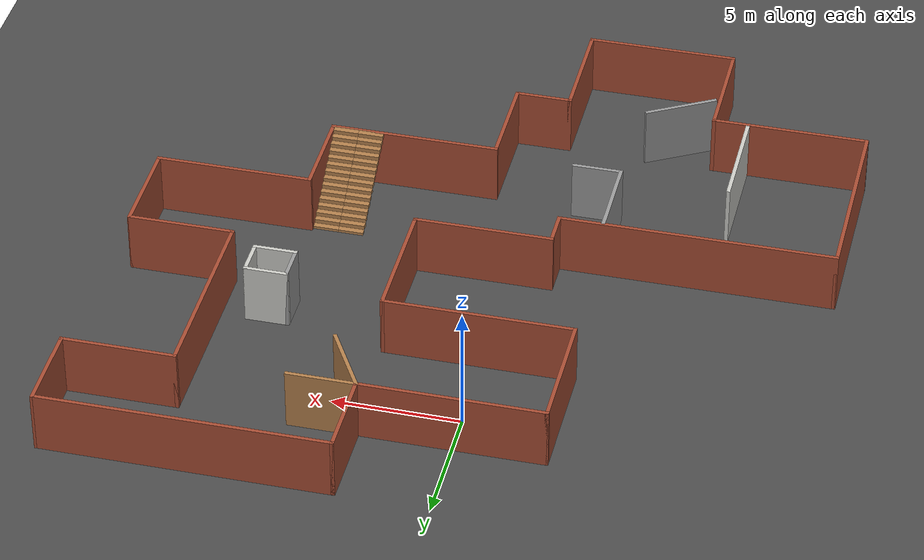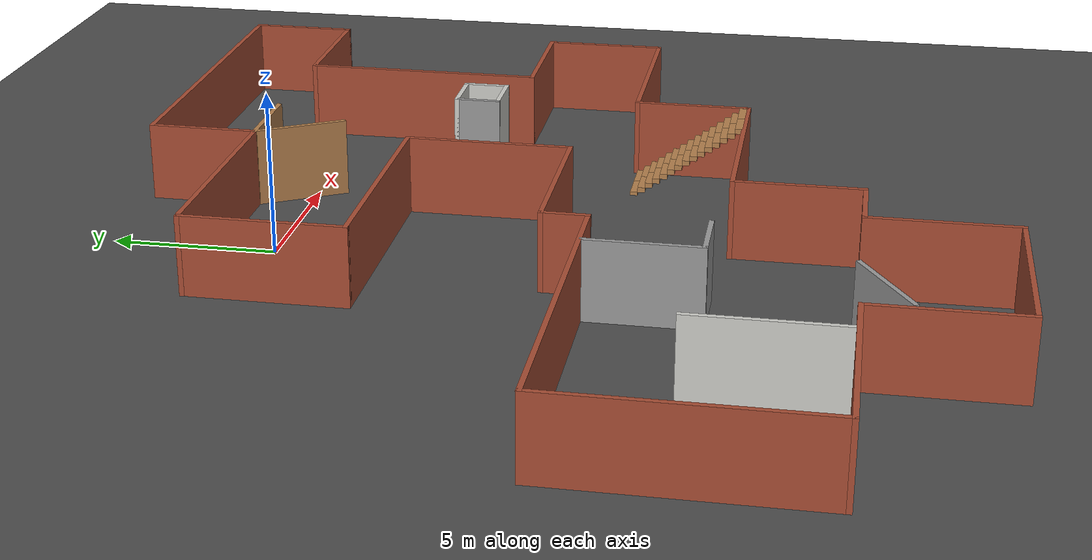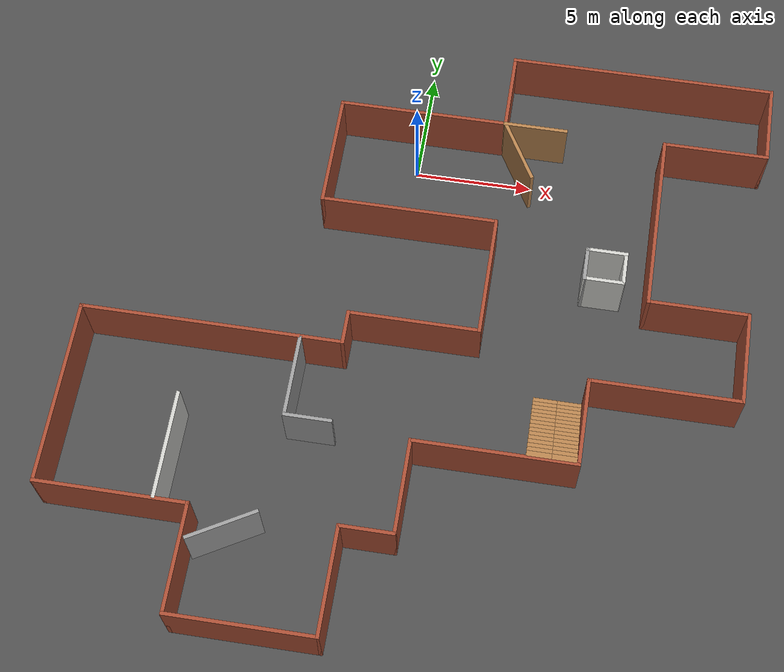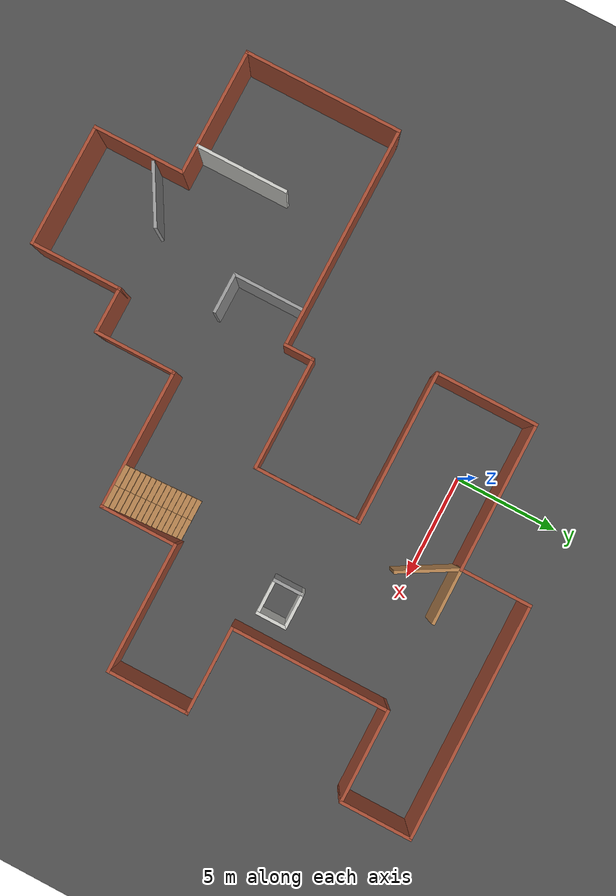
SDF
<sdf version="1.6">
 <world name="default">
  <light name="sun" type="directional">
   <pose>0 0 10 0 -0 0</pose>
   <diffuse>0.8 0.8 0.8 1</diffuse>
   <specular>0.2 0.2 0.2 1</specular>
   <attenuation>
    <range>1000</range>
    <constant>0.9</constant>
    <linear>0.01</linear>
    <quadratic>0.001</quadratic>
   </attenuation>
   <direction>-0.5 0.1 -0.9</direction>
  </light>
  <model name="ground_plane">
   <static>1</static>
   <link name="link">
    <collision name="collision">
     <geometry><plane><normal>0 0 1</normal><size>100 100</size></plane></geometry>
     <surface>
      <contact><collide_bitmask>65535</collide_bitmask></contact>
      <friction><ode><mu>100</mu><mu2>50</mu2></ode></friction>
     </surface>
    </collision>
    <visual name="visual">
     <cast_shadows>0</cast_shadows>
     <geometry><plane><normal>0 0 1</normal><size>100 100</size></plane></geometry>
     <material>
      <script><uri>file://media/materials/scripts/gazebo.material</uri><name>Gazebo/Grey</name></script>
     </material>
    </visual>
   </link>
  </model>
  <model name="asphalt_plane">
   <static>1</static>
   <link name="link">
    <collision name="collision"><geometry><box><size>200 200 0.1</size></box></geometry></collision>
    <visual name="visual">
     <cast_shadows>0</cast_shadows>
     <geometry><box><size>200 200 0.1</size></box></geometry>
     <material>
      <script>
       <uri>model://asphalt_plane/materials/scripts</uri>
       <uri>model://asphalt_plane/materials/textures</uri>
       <name>vrc/asphalt</name>
      </script>
     </material>
    </visual>
   </link>
  </model>
  <physics name="default_physics" default="0" type="ode">
   <ode>
    <solver>
     <type>quick</type>
     <iters>10</iters>
     <sor>1.3</sor>
     <use_dynamic_moi_rescaling>0</use_dynamic_moi_rescaling>
    </solver>
    <constraints>
     <cfm>0</cfm>
     <erp>0.2</erp>
     <contact_max_correcting_vel>100</contact_max_correcting_vel>
     <contact_surface_layer>0.001</contact_surface_layer>
    </constraints>
   </ode>
   <max_step_size>0.002</max_step_size>
   <real_time_factor>1</real_time_factor>
   <real_time_update_rate>500</real_time_update_rate>
  </physics>
  <gravity>0 0 -9.8066</gravity>
  <magnetic_field>6e-06 2.3e-05 -4.2e-05</magnetic_field>
  <atmosphere type="adiabatic"/>
  <scene><ambient>0.4 0.4 0.4 1</ambient><background>0.7 0.7 0.7 1</background><shadows>1</shadows></scene>
  <audio><device>default</device></audio>
  <spherical_coordinates>
   <surface_model>EARTH_WGS84</surface_model>
   <latitude_deg>0</latitude_deg>
   <longitude_deg>0</longitude_deg>
   <elevation>0</elevation>
   <heading_deg>0</heading_deg>
  </spherical_coordinates>
  <model name="complex_home_5">
   <pose>1.2585 -8.32201 0 0 -0 0</pose>
   <link name="Stairs_0">
    <visual name="Stairs_0_Visual_0">
     <pose>6.59442 -1.67499 0.083333 0 -0 0</pose>
     <geometry><box><size>1 0.233333 0.166667</size></box></geometry>
     <material>
      <script><uri>file://media/materials/scripts/gazebo.material</uri><name>Gazebo/Wood</name></script>
      <ambient>1 1 1 1</ambient>
     </material>
     <meta><layer>0</layer></meta>
    </visual>
    <collision name="Stairs_0_Collision_0">
     <geometry><box><size>1 0.233333 0.166667</size></box></geometry>
     <pose>6.59442 -1.67499 0.083333 0 -0 0</pose>
    </collision>
    <visual name="Stairs_0_Visual_1">
     <pose>6.59442 -1.90832 0.25 0 -0 0</pose>
     <geometry><box><size>1 0.233333 0.166667</size></box></geometry>
     <material>
      <script><uri>file://media/materials/scripts/gazebo.material</uri><name>Gazebo/Wood</name></script>
      <ambient>1 1 1 1</ambient>
     </material>
     <meta><layer>0</layer></meta>
    </visual>
    <collision name="Stairs_0_Collision_1">
     <geometry><box><size>1 0.233333 0.166667</size></box></geometry>
     <pose>6.59442 -1.90832 0.25 0 -0 0</pose>
    </collision>
    <visual name="Stairs_0_Visual_2">
     <pose>6.59442 -2.14165 0.416667 0 -0 0</pose>
     <geometry><box><size>1 0.233333 0.166667</size></box></geometry>
     <material>
      <script><uri>file://media/materials/scripts/gazebo.material</uri><name>Gazebo/Wood</name></script>
      <ambient>1 1 1 1</ambient>
     </material>
     <meta><layer>0</layer></meta>
    </visual>
    <collision name="Stairs_0_Collision_2">
     <geometry><box><size>1 0.233333 0.166667</size></box></geometry>
     <pose>6.59442 -2.14165 0.416667 0 -0 0</pose>
    </collision>
    <visual name="Stairs_0_Visual_3">
     <pose>6.59442 -2.37499 0.583333 0 -0 0</pose>
     <geometry><box><size>1 0.233333 0.166667</size></box></geometry>
     <material>
      <script><uri>file://media/materials/scripts/gazebo.material</uri><name>Gazebo/Wood</name></script>
      <ambient>1 1 1 1</ambient>
     </material>
     <meta><layer>0</layer></meta>
    </visual>
    <collision name="Stairs_0_Collision_3">
     <geometry><box><size>1 0.233333 0.166667</size></box></geometry>
     <pose>6.59442 -2.37499 0.583333 0 -0 0</pose>
    </collision>
    <visual name="Stairs_0_Visual_4">
     <pose>6.59442 -2.60832 0.75 0 -0 0</pose>
     <geometry><box><size>1 0.233333 0.166667</size></box></geometry>
     <material>
      <script><uri>file://media/materials/scripts/gazebo.material</uri><name>Gazebo/Wood</name></script>
      <ambient>1 1 1 1</ambient>
     </material>
     <meta><layer>0</layer></meta>
    </visual>
    <collision name="Stairs_0_Collision_4">
     <geometry><box><size>1 0.233333 0.166667</size></box></geometry>
     <pose>6.59442 -2.60832 0.75 0 -0 0</pose>
    </collision>
    <visual name="Stairs_0_Visual_5">
     <pose>6.59442 -2.84165 0.916667 0 -0 0</pose>
     <geometry><box><size>1 0.233333 0.166667</size></box></geometry>
     <material>
      <script><uri>file://media/materials/scripts/gazebo.material</uri><name>Gazebo/Wood</name></script>
      <ambient>1 1 1 1</ambient>
     </material>
     <meta><layer>0</layer></meta>
    </visual>
    <collision name="Stairs_0_Collision_5">
     <geometry><box><size>1 0.233333 0.166667</size></box></geometry>
     <pose>6.59442 -2.84165 0.916667 0 -0 0</pose>
    </collision>
    <visual name="Stairs_0_Visual_6">
     <pose>6.59442 -3.07499 1.08333 0 -0 0</pose>
     <geometry><box><size>1 0.233333 0.166667</size></box></geometry>
     <material>
      <script><uri>file://media/materials/scripts/gazebo.material</uri><name>Gazebo/Wood</name></script>
      <ambient>1 1 1 1</ambient>
     </material>
     <meta><layer>0</layer></meta>
    </visual>
    <collision name="Stairs_0_Collision_6">
     <geometry><box><size>1 0.233333 0.166667</size></box></geometry>
     <pose>6.59442 -3.07499 1.08333 0 -0 0</pose>
    </collision>
    <visual name="Stairs_0_Visual_7">
     <pose>6.59442 -3.30832 1.25 0 -0 0</pose>
     <geometry><box><size>1 0.233333 0.166667</size></box></geometry>
     <material>
      <script><uri>file://media/materials/scripts/gazebo.material</uri><name>Gazebo/Wood</name></script>
      <ambient>1 1 1 1</ambient>
     </material>
     <meta><layer>0</layer></meta>
    </visual>
    <collision name="Stairs_0_Collision_7">
     <geometry><box><size>1 0.233333 0.166667</size></box></geometry>
     <pose>6.59442 -3.30832 1.25 0 -0 0</pose>
    </collision>
    <visual name="Stairs_0_Visual_8">
     <pose>6.59442 -3.54165 1.41667 0 -0 0</pose>
     <geometry><box><size>1 0.233333 0.166667</size></box></geometry>
     <material>
      <script><uri>file://media/materials/scripts/gazebo.material</uri><name>Gazebo/Wood</name></script>
      <ambient>1 1 1 1</ambient>
     </material>
     <meta><layer>0</layer></meta>
    </visual>
    <collision name="Stairs_0_Collision_8">
     <geometry><box><size>1 0.233333 0.166667</size></box></geometry>
     <pose>6.59442 -3.54165 1.41667 0 -0 0</pose>
    </collision>
    <visual name="Stairs_0_Visual_9">
     <pose>6.59442 -3.77499 1.58333 0 -0 0</pose>
     <geometry><box><size>1 0.233333 0.166667</size></box></geometry>
     <material>
      <script><uri>file://media/materials/scripts/gazebo.material</uri><name>Gazebo/Wood</name></script>
      <ambient>1 1 1 1</ambient>
     </material>
     <meta><layer>0</layer></meta>
    </visual>
    <collision name="Stairs_0_Collision_9">
     <geometry><box><size>1 0.233333 0.166667</size></box></geometry>
     <pose>6.59442 -3.77499 1.58333 0 -0 0</pose>
    </collision>
    <visual name="Stairs_0_Visual_10">
     <pose>6.59442 -4.00832 1.75 0 -0 0</pose>
     <geometry><box><size>1 0.233333 0.166667</size></box></geometry>
     <material>
      <script><uri>file://media/materials/scripts/gazebo.material</uri><name>Gazebo/Wood</name></script>
      <ambient>1 1 1 1</ambient>
     </material>
     <meta><layer>0</layer></meta>
    </visual>
    <collision name="Stairs_0_Collision_10">
     <geometry><box><size>1 0.233333 0.166667</size></box></geometry>
     <pose>6.59442 -4.00832 1.75 0 -0 0</pose>
    </collision>
    <visual name="Stairs_0_Visual_11">
     <pose>6.59442 -4.24165 1.91667 0 -0 0</pose>
     <geometry><box><size>1 0.233333 0.166667</size></box></geometry>
     <material>
      <script><uri>file://media/materials/scripts/gazebo.material</uri><name>Gazebo/Wood</name></script>
      <ambient>1 1 1 1</ambient>
     </material>
     <meta><layer>0</layer></meta>
    </visual>
    <collision name="Stairs_0_Collision_11">
     <geometry><box><size>1 0.233333 0.166667</size></box></geometry>
     <pose>6.59442 -4.24165 1.91667 0 -0 0</pose>
    </collision>
    <visual name="Stairs_0_Visual_12">
     <pose>6.59442 -4.47499 2.08333 0 -0 0</pose>
     <geometry><box><size>1 0.233333 0.166667</size></box></geometry>
     <material>
      <script><uri>file://media/materials/scripts/gazebo.material</uri><name>Gazebo/Wood</name></script>
      <ambient>1 1 1 1</ambient>
     </material>
     <meta><layer>0</layer></meta>
    </visual>
    <collision name="Stairs_0_Collision_12">
     <geometry><box><size>1 0.233333 0.166667</size></box></geometry>
     <pose>6.59442 -4.47499 2.08333 0 -0 0</pose>
    </collision>
    <visual name="Stairs_0_Visual_13">
     <pose>6.59442 -4.70832 2.25 0 -0 0</pose>
     <geometry><box><size>1 0.233333 0.166667</size></box></geometry>
     <material>
      <script><uri>file://media/materials/scripts/gazebo.material</uri><name>Gazebo/Wood</name></script>
      <ambient>1 1 1 1</ambient>
     </material>
     <meta><layer>0</layer></meta>
    </visual>
    <collision name="Stairs_0_Collision_13">
     <geometry><box><size>1 0.233333 0.166667</size></box></geometry>
     <pose>6.59442 -4.70832 2.25 0 -0 0</pose>
    </collision>
    <visual name="Stairs_0_Visual_14">
     <pose>6.59442 -4.94165 2.41667 0 -0 0</pose>
     <geometry><box><size>1 0.233333 0.166667</size></box></geometry>
     <material>
      <script><uri>file://media/materials/scripts/gazebo.material</uri><name>Gazebo/Wood</name></script>
      <ambient>1 1 1 1</ambient>
     </material>
     <meta><layer>0</layer></meta>
    </visual>
    <collision name="Stairs_0_Collision_14">
     <geometry><box><size>1 0.233333 0.166667</size></box></geometry>
     <pose>6.59442 -4.94165 2.41667 0 -0 0</pose>
    </collision>
   </link>
   <link name="Stairs_1">
    <visual name="Stairs_1_Visual_0">
     <pose>5.59627 -1.67499 0.083333 0 -0 0</pose>
     <geometry><box><size>1 0.233333 0.166667</size></box></geometry>
     <material>
      <script><uri>file://media/materials/scripts/gazebo.material</uri><name>Gazebo/Wood</name></script>
      <ambient>1 1 1 1</ambient>
     </material>
     <meta><layer>0</layer></meta>
    </visual>
    <collision name="Stairs_1_Collision_0">
     <geometry><box><size>1 0.233333 0.166667</size></box></geometry>
     <pose>5.59627 -1.67499 0.083333 0 -0 0</pose>
    </collision>
    <visual name="Stairs_1_Visual_1">
     <pose>5.59627 -1.90832 0.25 0 -0 0</pose>
     <geometry><box><size>1 0.233333 0.166667</size></box></geometry>
     <material>
      <script><uri>file://media/materials/scripts/gazebo.material</uri><name>Gazebo/Wood</name></script>
      <ambient>1 1 1 1</ambient>
     </material>
     <meta><layer>0</layer></meta>
    </visual>
    <collision name="Stairs_1_Collision_1">
     <geometry><box><size>1 0.233333 0.166667</size></box></geometry>
     <pose>5.59627 -1.90832 0.25 0 -0 0</pose>
    </collision>
    <visual name="Stairs_1_Visual_2">
     <pose>5.59627 -2.14165 0.416667 0 -0 0</pose>
     <geometry><box><size>1 0.233333 0.166667</size></box></geometry>
     <material>
      <script><uri>file://media/materials/scripts/gazebo.material</uri><name>Gazebo/Wood</name></script>
      <ambient>1 1 1 1</ambient>
     </material>
     <meta><layer>0</layer></meta>
    </visual>
    <collision name="Stairs_1_Collision_2">
     <geometry><box><size>1 0.233333 0.166667</size></box></geometry>
     <pose>5.59627 -2.14165 0.416667 0 -0 0</pose>
    </collision>
    <visual name="Stairs_1_Visual_3">
     <pose>5.59627 -2.37499 0.583333 0 -0 0</pose>
     <geometry><box><size>1 0.233333 0.166667</size></box></geometry>
     <material>
      <script><uri>file://media/materials/scripts/gazebo.material</uri><name>Gazebo/Wood</name></script>
      <ambient>1 1 1 1</ambient>
     </material>
     <meta><layer>0</layer></meta>
    </visual>
    <collision name="Stairs_1_Collision_3">
     <geometry><box><size>1 0.233333 0.166667</size></box></geometry>
     <pose>5.59627 -2.37499 0.583333 0 -0 0</pose>
    </collision>
    <visual name="Stairs_1_Visual_4">
     <pose>5.59627 -2.60832 0.75 0 -0 0</pose>
     <geometry><box><size>1 0.233333 0.166667</size></box></geometry>
     <material>
      <script><uri>file://media/materials/scripts/gazebo.material</uri><name>Gazebo/Wood</name></script>
      <ambient>1 1 1 1</ambient>
     </material>
     <meta><layer>0</layer></meta>
    </visual>
    <collision name="Stairs_1_Collision_4">
     <geometry><box><size>1 0.233333 0.166667</size></box></geometry>
     <pose>5.59627 -2.60832 0.75 0 -0 0</pose>
    </collision>
    <visual name="Stairs_1_Visual_5">
     <pose>5.59627 -2.84165 0.916667 0 -0 0</pose>
     <geometry><box><size>1 0.233333 0.166667</size></box></geometry>
     <material>
      <script><uri>file://media/materials/scripts/gazebo.material</uri><name>Gazebo/Wood</name></script>
      <ambient>1 1 1 1</ambient>
     </material>
     <meta><layer>0</layer></meta>
    </visual>
    <collision name="Stairs_1_Collision_5">
     <geometry><box><size>1 0.233333 0.166667</size></box></geometry>
     <pose>5.59627 -2.84165 0.916667 0 -0 0</pose>
    </collision>
    <visual name="Stairs_1_Visual_6">
     <pose>5.59627 -3.07499 1.08333 0 -0 0</pose>
     <geometry><box><size>1 0.233333 0.166667</size></box></geometry>
     <material>
      <script><uri>file://media/materials/scripts/gazebo.material</uri><name>Gazebo/Wood</name></script>
      <ambient>1 1 1 1</ambient>
     </material>
     <meta><layer>0</layer></meta>
    </visual>
    <collision name="Stairs_1_Collision_6">
     <geometry><box><size>1 0.233333 0.166667</size></box></geometry>
     <pose>5.59627 -3.07499 1.08333 0 -0 0</pose>
    </collision>
    <visual name="Stairs_1_Visual_7">
     <pose>5.59627 -3.30832 1.25 0 -0 0</pose>
     <geometry><box><size>1 0.233333 0.166667</size></box></geometry>
     <material>
      <script><uri>file://media/materials/scripts/gazebo.material</uri><name>Gazebo/Wood</name></script>
      <ambient>1 1 1 1</ambient>
     </material>
     <meta><layer>0</layer></meta>
    </visual>
    <collision name="Stairs_1_Collision_7">
     <geometry><box><size>1 0.233333 0.166667</size></box></geometry>
     <pose>5.59627 -3.30832 1.25 0 -0 0</pose>
    </collision>
    <visual name="Stairs_1_Visual_8">
     <pose>5.59627 -3.54165 1.41667 0 -0 0</pose>
     <geometry><box><size>1 0.233333 0.166667</size></box></geometry>
     <material>
      <script><uri>file://media/materials/scripts/gazebo.material</uri><name>Gazebo/Wood</name></script>
      <ambient>1 1 1 1</ambient>
     </material>
     <meta><layer>0</layer></meta>
    </visual>
    <collision name="Stairs_1_Collision_8">
     <geometry><box><size>1 0.233333 0.166667</size></box></geometry>
     <pose>5.59627 -3.54165 1.41667 0 -0 0</pose>
    </collision>
    <visual name="Stairs_1_Visual_9">
     <pose>5.59627 -3.77499 1.58333 0 -0 0</pose>
     <geometry><box><size>1 0.233333 0.166667</size></box></geometry>
     <material>
      <script><uri>file://media/materials/scripts/gazebo.material</uri><name>Gazebo/Wood</name></script>
      <ambient>1 1 1 1</ambient>
     </material>
     <meta><layer>0</layer></meta>
    </visual>
    <collision name="Stairs_1_Collision_9">
     <geometry><box><size>1 0.233333 0.166667</size></box></geometry>
     <pose>5.59627 -3.77499 1.58333 0 -0 0</pose>
    </collision>
    <visual name="Stairs_1_Visual_10">
     <pose>5.59627 -4.00832 1.75 0 -0 0</pose>
     <geometry><box><size>1 0.233333 0.166667</size></box></geometry>
     <material>
      <script><uri>file://media/materials/scripts/gazebo.material</uri><name>Gazebo/Wood</name></script>
      <ambient>1 1 1 1</ambient>
     </material>
     <meta><layer>0</layer></meta>
    </visual>
    <collision name="Stairs_1_Collision_10">
     <geometry><box><size>1 0.233333 0.166667</size></box></geometry>
     <pose>5.59627 -4.00832 1.75 0 -0 0</pose>
    </collision>
    <visual name="Stairs_1_Visual_11">
     <pose>5.59627 -4.24165 1.91667 0 -0 0</pose>
     <geometry><box><size>1 0.233333 0.166667</size></box></geometry>
     <material>
      <script><uri>file://media/materials/scripts/gazebo.material</uri><name>Gazebo/Wood</name></script>
      <ambient>1 1 1 1</ambient>
     </material>
     <meta><layer>0</layer></meta>
    </visual>
    <collision name="Stairs_1_Collision_11">
     <geometry><box><size>1 0.233333 0.166667</size></box></geometry>
     <pose>5.59627 -4.24165 1.91667 0 -0 0</pose>
    </collision>
    <visual name="Stairs_1_Visual_12">
     <pose>5.59627 -4.47499 2.08333 0 -0 0</pose>
     <geometry><box><size>1 0.233333 0.166667</size></box></geometry>
     <material>
      <script><uri>file://media/materials/scripts/gazebo.material</uri><name>Gazebo/Wood</name></script>
      <ambient>1 1 1 1</ambient>
     </material>
     <meta><layer>0</layer></meta>
    </visual>
    <collision name="Stairs_1_Collision_12">
     <geometry><box><size>1 0.233333 0.166667</size></box></geometry>
     <pose>5.59627 -4.47499 2.08333 0 -0 0</pose>
    </collision>
    <visual name="Stairs_1_Visual_13">
     <pose>5.59627 -4.70832 2.25 0 -0 0</pose>
     <geometry><box><size>1 0.233333 0.166667</size></box></geometry>
     <material>
      <script><uri>file://media/materials/scripts/gazebo.material</uri><name>Gazebo/Wood</name></script>
      <ambient>1 1 1 1</ambient>
     </material>
     <meta><layer>0</layer></meta>
    </visual>
    <collision name="Stairs_1_Collision_13">
     <geometry><box><size>1 0.233333 0.166667</size></box></geometry>
     <pose>5.59627 -4.70832 2.25 0 -0 0</pose>
    </collision>
    <visual name="Stairs_1_Visual_14">
     <pose>5.59627 -4.94165 2.41667 0 -0 0</pose>
     <geometry><box><size>1 0.233333 0.166667</size></box></geometry>
     <material>
      <script><uri>file://media/materials/scripts/gazebo.material</uri><name>Gazebo/Wood</name></script>
      <ambient>1 1 1 1</ambient>
     </material>
     <meta><layer>0</layer></meta>
    </visual>
    <collision name="Stairs_1_Collision_14">
     <geometry><box><size>1 0.233333 0.166667</size></box></geometry>
     <pose>5.59627 -4.94165 2.41667 0 -0 0</pose>
    </collision>
   </link>
   <link name="Wall_10">
    <collision name="Wall_10_Collision">
     <geometry><box><size>7.5 0.15 2.5</size></box></geometry>
     <pose>0 0 1.25 0 -0 0</pose>
    </collision>
    <visual name="Wall_10_Visual">
     <pose>0 0 1.25 0 -0 0</pose>
     <geometry><box><size>7.5 0.15 2.5</size></box></geometry>
     <material>
      <script><uri>file://media/materials/scripts/gazebo.material</uri><name>Gazebo/Bricks</name></script>
      <ambient>1 1 1 1</ambient>
     </material>
     <meta><layer>0</layer></meta>
    </visual>
    <pose>-1.1 5.1 0 0 -0 0</pose>
   </link>
   <link name="Wall_12">
    <collision name="Wall_12_Collision">
     <geometry><box><size>7.25 0.15 2.5</size></box></geometry>
     <pose>0 0 1.25 0 -0 0</pose>
    </collision>
    <visual name="Wall_12_Visual">
     <pose>0 0 1.25 0 -0 0</pose>
     <geometry><box><size>7.25 0.15 2.5</size></box></geometry>
     <material>
      <script><uri>file://media/materials/scripts/gazebo.material</uri><name>Gazebo/Bricks</name></script>
      <ambient>1 1 1 1</ambient>
     </material>
     <meta><layer>0</layer></meta>
    </visual>
    <pose>-1.225 9.95 0 0 -0 0</pose>
   </link>
   <link name="Wall_14">
    <collision name="Wall_14_Collision">
     <geometry><box><size>7.75 0.15 2.5</size></box></geometry>
     <pose>0 0 1.25 0 -0 0</pose>
    </collision>
    <visual name="Wall_14_Visual">
     <pose>0 0 1.25 0 -0 0</pose>
     <geometry><box><size>7.75 0.15 2.5</size></box></geometry>
     <material>
      <script><uri>file://media/materials/scripts/gazebo.material</uri><name>Gazebo/Bricks</name></script>
      <ambient>1 1 1 1</ambient>
     </material>
     <meta><layer>0</layer></meta>
    </visual>
    <pose>9.175 6.15 0 0 -0 -1.5708</pose>
   </link>
   <link name="Wall_15">
    <collision name="Wall_15_Collision">
     <geometry><box><size>4.25 0.15 2.5</size></box></geometry>
     <pose>0 0 1.25 0 -0 0</pose>
    </collision>
    <visual name="Wall_15_Visual">
     <pose>0 0 1.25 0 -0 0</pose>
     <geometry><box><size>4.25 0.15 2.5</size></box></geometry>
     <material>
      <script><uri>file://media/materials/scripts/gazebo.material</uri><name>Gazebo/Bricks</name></script>
      <ambient>1 1 1 1</ambient>
     </material>
     <meta><layer>0</layer></meta>
    </visual>
    <pose>11.225 2.35 0 0 -0 0</pose>
   </link>
   <link name="Wall_16">
    <collision name="Wall_16_Collision">
     <geometry><box><size>4 0.15 2.5</size></box></geometry>
     <pose>0 0 1.25 0 -0 0</pose>
    </collision>
    <visual name="Wall_16_Visual">
     <pose>0 0 1.25 0 -0 0</pose>
     <geometry><box><size>4 0.15 2.5</size></box></geometry>
     <material>
      <script><uri>file://media/materials/scripts/gazebo.material</uri><name>Gazebo/Bricks</name></script>
      <ambient>1 1 1 1</ambient>
     </material>
     <meta><layer>0</layer></meta>
    </visual>
    <pose>13.275 0.425 0 0 -0 -1.5708</pose>
   </link>
   <link name="Wall_17">
    <collision name="Wall_17_Collision">
     <geometry><box><size>6.25 0.15 2.5</size></box></geometry>
     <pose>0 0 1.25 0 -0 0</pose>
    </collision>
    <visual name="Wall_17_Visual">
     <pose>0 0 1.25 0 -0 0</pose>
     <geometry><box><size>6.25 0.15 2.5</size></box></geometry>
     <material>
      <script><uri>file://media/materials/scripts/gazebo.material</uri><name>Gazebo/Bricks</name></script>
      <ambient>1 1 1 1</ambient>
     </material>
     <meta><layer>0</layer></meta>
    </visual>
    <pose>10.225 -1.5 0 0 -0 3.14159</pose>
   </link>
   <link name="Wall_18">
    <collision name="Wall_18_Collision">
     <geometry><box><size>3.75 0.15 2.5</size></box></geometry>
     <pose>0 0 1.25 0 -0 0</pose>
    </collision>
    <visual name="Wall_18_Visual">
     <pose>0 0 1.25 0 -0 0</pose>
     <geometry><box><size>3.75 0.15 2.5</size></box></geometry>
     <material>
      <script><uri>file://media/materials/scripts/gazebo.material</uri><name>Gazebo/Bricks</name></script>
      <ambient>1 1 1 1</ambient>
     </material>
     <meta><layer>0</layer></meta>
    </visual>
    <pose>7.175 -3.3 0 0 -0 -1.5708</pose>
   </link>
   <link name="Wall_19">
    <collision name="Wall_19_Collision">
     <geometry><box><size>6.75 0.15 2.5</size></box></geometry>
     <pose>0 0 1.25 0 -0 0</pose>
    </collision>
    <visual name="Wall_19_Visual">
     <pose>0 0 1.25 0 -0 0</pose>
     <geometry><box><size>6.75 0.15 2.5</size></box></geometry>
     <material>
      <script><uri>file://media/materials/scripts/gazebo.material</uri><name>Gazebo/Bricks</name></script>
      <ambient>1 1 1 1</ambient>
     </material>
     <meta><layer>0</layer></meta>
    </visual>
    <pose>3.875 -5.1 0 0 -0 3.14159</pose>
   </link>
   <link name="Wall_20">
    <collision name="Wall_20_Collision">
     <geometry><box><size>4 0.15 2.5</size></box></geometry>
     <pose>0 0 1.25 0 -0 0</pose>
    </collision>
    <visual name="Wall_20_Visual">
     <pose>0 0 1.25 0 -0 0</pose>
     <geometry><box><size>4 0.15 2.5</size></box></geometry>
     <material>
      <script><uri>file://media/materials/scripts/gazebo.material</uri><name>Gazebo/Bricks</name></script>
      <ambient>1 1 1 1</ambient>
     </material>
     <meta><layer>0</layer></meta>
    </visual>
    <pose>0.575001 -7.025 0 0 -0 -1.5708</pose>
   </link>
   <link name="Wall_22">
    <collision name="Wall_22_Collision">
     <geometry><box><size>7.75 0.15 2.5</size></box></geometry>
     <pose>0 0 1.25 0 -0 0</pose>
    </collision>
    <visual name="Wall_22_Visual">
     <pose>0 0 1.25 0 -0 0</pose>
     <geometry><box><size>7.75 0.15 2.5</size></box></geometry>
     <material>
      <script><uri>file://media/materials/scripts/gazebo.material</uri><name>Gazebo/Bricks</name></script>
      <ambient>1 1 1 1</ambient>
     </material>
     <meta><layer>0</layer></meta>
    </visual>
    <pose>-13.525 -5.15 0 0 -0 1.5708</pose>
   </link>
   <link name="Wall_23">
    <collision name="Wall_23_Collision">
     <geometry><box><size>10.75 0.15 2.5</size></box></geometry>
     <pose>0 0 1.25 0 -0 0</pose>
    </collision>
    <visual name="Wall_23_Visual">
     <pose>0 0 1.25 0 -0 0</pose>
     <geometry><box><size>10.75 0.15 2.5</size></box></geometry>
     <material>
      <script><uri>file://media/materials/scripts/gazebo.material</uri><name>Gazebo/Bricks</name></script>
      <ambient>1 1 1 1</ambient>
     </material>
     <meta><layer>0</layer></meta>
    </visual>
    <pose>-8.225 -1.35 0 0 -0 0</pose>
   </link>
   <link name="Wall_26">
    <collision name="Wall_26_Collision">
     <geometry><box><size>5.25 0.15 2.5</size></box></geometry>
     <pose>0 0 1.25 0 -0 0</pose>
    </collision>
    <visual name="Wall_26_Visual">
     <pose>0 0 1.25 0 -0 0</pose>
     <geometry><box><size>5.25 0.15 2.5</size></box></geometry>
     <material>
      <script><uri>file://media/materials/scripts/gazebo.material</uri><name>Gazebo/Bricks</name></script>
      <ambient>1 1 1 1</ambient>
     </material>
     <meta><layer>0</layer></meta>
    </visual>
    <pose>2.575 2.55 0 0 -0 -1.5708</pose>
   </link>
   <link name="Wall_27">
    <collision name="Wall_27_Collision">
     <geometry><box><size>5.5 0.15 2.5</size></box></geometry>
     <pose>0 0 1.25 0 -0 0</pose>
    </collision>
    <visual name="Wall_27_Visual">
     <pose>0 0 1.25 0 -0 0</pose>
     <geometry><box><size>5.5 0.15 2.5</size></box></geometry>
     <material>
      <script><uri>file://media/materials/scripts/gazebo.material</uri><name>Gazebo/Bricks</name></script>
      <ambient>1 1 1 1</ambient>
     </material>
     <meta><layer>0</layer></meta>
    </visual>
    <pose>-0.099999 0 0 0 -0 3.14159</pose>
   </link>
   <link name="Wall_28">
    <collision name="Wall_28_Collision">
     <geometry><box><size>1.5 0.15 2.5</size></box></geometry>
     <pose>0 0 1.25 0 -0 0</pose>
    </collision>
    <visual name="Wall_28_Visual">
     <pose>0 0 1.25 0 -0 0</pose>
     <geometry><box><size>1.5 0.15 2.5</size></box></geometry>
     <material>
      <script><uri>file://media/materials/scripts/gazebo.material</uri><name>Gazebo/Bricks</name></script>
      <ambient>1 1 1 1</ambient>
     </material>
     <meta><layer>0</layer></meta>
    </visual>
    <pose>-2.775 -0.675 0 0 -0 -1.5708</pose>
   </link>
   <link name="Wall_30">
    <collision name="Wall_30_Collision">
     <geometry><box><size>6.25 0.15 2.5</size></box></geometry>
     <pose>0 0 1.25 0 -0 0</pose>
    </collision>
    <visual name="Wall_30_Visual">
     <pose>0 0 1.25 0 -0 0</pose>
     <geometry><box><size>6.25 0.15 2.5</size></box></geometry>
     <material>
      <script><uri>file://media/materials/scripts/gazebo.material</uri><name>Gazebo/Bricks</name></script>
      <ambient>1 1 1 1</ambient>
     </material>
     <meta><layer>0</layer></meta>
    </visual>
    <pose>-10.475 -8.95 0 0 -0 0</pose>
   </link>
   <link name="Wall_31">
    <collision name="Wall_31_Collision">
     <geometry><box><size>4.5 0.15 2.5</size></box></geometry>
     <pose>0 0 1.25 0 -0 0</pose>
    </collision>
    <visual name="Wall_31_Visual">
     <pose>0 0 1.25 0 -0 0</pose>
     <geometry><box><size>4.5 0.15 2.5</size></box></geometry>
     <material>
      <script><uri>file://media/materials/scripts/gazebo.material</uri><name>Gazebo/Bricks</name></script>
      <ambient>1 1 1 1</ambient>
     </material>
     <meta><layer>0</layer></meta>
    </visual>
    <pose>-7.425 -11.125 0 0 -0 -1.5708</pose>
   </link>
   <link name="Wall_32">
    <collision name="Wall_32_Collision">
     <geometry><box><size>6 0.15 2.5</size></box></geometry>
     <pose>0 0 1.25 0 -0 0</pose>
    </collision>
    <visual name="Wall_32_Visual">
     <pose>0 0 1.25 0 -0 0</pose>
     <geometry><box><size>6 0.15 2.5</size></box></geometry>
     <material>
      <script><uri>file://media/materials/scripts/gazebo.material</uri><name>Gazebo/Bricks</name></script>
      <ambient>1 1 1 1</ambient>
     </material>
     <meta><layer>0</layer></meta>
    </visual>
    <pose>-4.5 -13.3 0 0 -0 0</pose>
   </link>
   <link name="Wall_33">
    <collision name="Wall_33_Collision">
     <geometry><box><size>4.5 0.15 2.5</size></box></geometry>
     <pose>0 0 1.25 0 -0 0</pose>
    </collision>
    <visual name="Wall_33_Visual">
     <pose>0 0 1.25 0 -0 0</pose>
     <geometry><box><size>4.5 0.15 2.5</size></box></geometry>
     <material>
      <script><uri>file://media/materials/scripts/gazebo.material</uri><name>Gazebo/Bricks</name></script>
      <ambient>1 1 1 1</ambient>
     </material>
     <meta><layer>0</layer></meta>
    </visual>
    <pose>-1.575 -11.125 0 0 -0 1.5708</pose>
   </link>
   <link name="Wall_34">
    <collision name="Wall_34_Collision">
     <geometry><box><size>2.3 0.15 2.5</size></box></geometry>
     <pose>0 0 1.25 0 -0 0</pose>
    </collision>
    <visual name="Wall_34_Visual">
     <pose>0 0 1.25 0 -0 0</pose>
     <geometry><box><size>2.3 0.15 2.5</size></box></geometry>
     <material>
      <script><uri>file://media/materials/scripts/gazebo.material</uri><name>Gazebo/Bricks</name></script>
      <ambient>1 1 1 1</ambient>
     </material>
     <meta><layer>0</layer></meta>
    </visual>
    <pose>-0.499999 -8.95 0 0 -0 0</pose>
   </link>
   <link name="Wall_36">
    <collision name="Wall_36_Collision">
     <geometry><box><size>3.5 0.15 2.5</size></box></geometry>
     <pose>0 0 1.25 0 -0 0</pose>
    </collision>
    <visual name="Wall_36_Visual">
     <pose>0 0 1.25 0 -0 0</pose>
     <geometry><box><size>3.5 0.15 2.5</size></box></geometry>
     <material>
      <script><uri>file://media/materials/scripts/gazebo.material</uri><name>Gazebo/Bricks</name></script>
      <ambient>1 1 1 1</ambient>
     </material>
     <meta><layer>0</layer></meta>
    </visual>
    <pose>2.325 11.625 0 0 -0 1.5708</pose>
   </link>
   <link name="Wall_37">
    <collision name="Wall_37_Collision">
     <geometry><box><size>11.25 0.15 2.5</size></box></geometry>
     <pose>0 0 1.25 0 -0 0</pose>
    </collision>
    <visual name="Wall_37_Visual">
     <pose>0 0 1.25 0 -0 0</pose>
     <geometry><box><size>11.25 0.15 2.5</size></box></geometry>
     <material>
      <script><uri>file://media/materials/scripts/gazebo.material</uri><name>Gazebo/Bricks</name></script>
      <ambient>1 1 1 1</ambient>
     </material>
     <meta><layer>0</layer></meta>
    </visual>
    <pose>7.875 13.3 0 0 -0 0</pose>
   </link>
   <link name="Wall_43">
    <collision name="Wall_43_Collision">
     <geometry><box><size>4.5 0.15 2.5</size></box></geometry>
     <pose>0 0 1.25 0 -0 0</pose>
    </collision>
    <visual name="Wall_43_Visual">
     <pose>0 0 1.25 0 -0 0</pose>
     <geometry><box><size>4.5 0.15 2.5</size></box></geometry>
     <material>
      <script><uri>file://media/materials/scripts/gazebo.material</uri><name>Gazebo/Bricks</name></script>
      <ambient>1 1 1 1</ambient>
     </material>
     <meta><layer>0</layer></meta>
    </visual>
    <pose>11.35 9.95 0 0 -0 0</pose>
   </link>
   <link name="Wall_44">
    <collision name="Wall_44_Collision">
     <geometry><box><size>3.5 0.15 2.5</size></box></geometry>
     <pose>0 0 1.25 0 -0 0</pose>
    </collision>
    <visual name="Wall_44_Visual">
     <pose>0 0 1.25 0 -0 0</pose>
     <geometry><box><size>3.5 0.15 2.5</size></box></geometry>
     <material>
      <script><uri>file://media/materials/scripts/gazebo.material</uri><name>Gazebo/Bricks</name></script>
      <ambient>1 1 1 1</ambient>
     </material>
     <meta><layer>0</layer></meta>
    </visual>
    <pose>13.525 11.625 0 0 -0 1.5708</pose>
   </link>
   <link name="Wall_46">
    <collision name="Wall_46_Collision">
     <geometry><box><size>1.75 0.15 2.5</size></box></geometry>
     <pose>0 0 1.25 0 -0 0</pose>
    </collision>
    <visual name="Wall_46_Visual">
     <pose>0 0 1.25 0 -0 0</pose>
     <geometry><box><size>1.75 0.15 2.5</size></box></geometry>
     <material>
      <script><uri>file://media/materials/scripts/gazebo.material</uri><name>Gazebo/CeilingTiled</name></script>
      <ambient>1 1 1 1</ambient>
     </material>
     <meta><layer>0</layer></meta>
    </visual>
    <pose>7.28869 4.37559 0 0 -0 0</pose>
   </link>
   <link name="Wall_47">
    <collision name="Wall_47_Collision">
     <geometry><box><size>1.5 0.15 2.5</size></box></geometry>
     <pose>0 0 1.25 0 -0 0</pose>
    </collision>
    <visual name="Wall_47_Visual">
     <pose>0 0 1.25 0 -0 0</pose>
     <geometry><box><size>1.5 0.15 2.5</size></box></geometry>
     <material>
      <script><uri>file://media/materials/scripts/gazebo.material</uri><name>Gazebo/CeilingTiled</name></script>
      <ambient>1 1 1 1</ambient>
     </material>
     <meta><layer>0</layer></meta>
    </visual>
    <pose>8.08869 3.70059 0 0 -0 -1.5708</pose>
   </link>
   <link name="Wall_50">
    <collision name="Wall_50_Collision">
     <geometry><box><size>1.5 0.15 2.5</size></box></geometry>
     <pose>0 0 1.25 0 -0 0</pose>
    </collision>
    <visual name="Wall_50_Visual">
     <pose>0 0 1.25 0 -0 0</pose>
     <geometry><box><size>1.5 0.15 2.5</size></box></geometry>
     <material>
      <script><uri>file://media/materials/scripts/gazebo.material</uri><name>Gazebo/Grey</name></script>
      <ambient>1 1 1 1</ambient>
     </material>
     <meta><layer>0</layer></meta>
    </visual>
    <pose>6.48869 3.70059 0 0 -0 -1.5708</pose>
   </link>
   <link name="Wall_51">
    <collision name="Wall_51_Collision">
     <geometry><box><size>1.75 0.15 2.5</size></box></geometry>
     <pose>0 0 1.25 0 -0 0</pose>
    </collision>
    <visual name="Wall_51_Visual">
     <pose>0 0 1.25 0 -0 0</pose>
     <geometry><box><size>1.75 0.15 2.5</size></box></geometry>
     <material>
      <script><uri>file://media/materials/scripts/gazebo.material</uri><name>Gazebo/CeilingTiled</name></script>
      <ambient>1 1 1 1</ambient>
     </material>
     <meta><layer>0</layer></meta>
    </visual>
    <pose>7.28869 3.02559 0 0 -0 0</pose>
   </link>
   <link name="Wall_54">
    <collision name="Wall_54_Collision">
     <geometry><box><size>3.5 0.15 2.5</size></box></geometry>
     <pose>0 0 1.25 0 -0 0</pose>
    </collision>
    <visual name="Wall_54_Visual">
     <pose>0 0 1.25 0 -0 0</pose>
     <geometry><box><size>3.5 0.15 2.5</size></box></geometry>
     <material>
      <script><uri>file://media/materials/scripts/gazebo.material</uri><name>Gazebo/Grey</name></script>
      <ambient>1 1 1 1</ambient>
     </material>
     <meta><layer>0</layer></meta>
    </visual>
    <pose>-4.49416 -3.10212 0 0 -0 -1.5708</pose>
   </link>
   <link name="Wall_55">
    <collision name="Wall_55_Collision">
     <geometry><box><size>2 0.15 2.5</size></box></geometry>
     <pose>0 0 1.25 0 -0 0</pose>
    </collision>
    <visual name="Wall_55_Visual">
     <pose>0 0 1.25 0 -0 0</pose>
     <geometry><box><size>2 0.15 2.5</size></box></geometry>
     <material>
      <script><uri>file://media/materials/scripts/gazebo.material</uri><name>Gazebo/Grey</name></script>
      <ambient>1 1 1 1</ambient>
     </material>
     <meta><layer>0</layer></meta>
    </visual>
    <pose>-3.56916 -4.77712 0 0 -0 0</pose>
   </link>
   <link name="Wall_57">
    <collision name="Wall_57_Collision">
     <geometry><box><size>4.5 0.15 2.5</size></box></geometry>
     <pose>0 0 1.25 0 -0 0</pose>
    </collision>
    <visual name="Wall_57_Visual">
     <pose>0 0 1.25 0 -0 0</pose>
     <geometry><box><size>4.5 0.15 2.5</size></box></geometry>
     <material>
      <script><uri>file://media/materials/scripts/gazebo.material</uri><name>Gazebo/CeilingTiled</name></script>
      <ambient>1 1 1 1</ambient>
     </material>
     <meta><layer>0</layer></meta>
    </visual>
    <pose>-8.79367 -6.7063 0 0 -0 1.5708</pose>
   </link>
   <link name="Wall_59">
    <collision name="Wall_59_Collision">
     <geometry><box><size>3 0.15 2.5</size></box></geometry>
     <pose>0 0 1.25 0 -0 0</pose>
    </collision>
    <visual name="Wall_59_Visual">
     <pose>0 0 1.25 0 -0 0</pose>
     <geometry><box><size>3 0.15 2.5</size></box></geometry>
     <material>
      <script><uri>file://media/materials/scripts/gazebo.material</uri><name>Gazebo/Grey</name></script>
      <ambient>1 1 1 1</ambient>
     </material>
     <meta><layer>0</layer></meta>
    </visual>
    <pose>-5.97918 -9.58284 0 0 -0 0.523599</pose>
   </link>
   <link name="Wall_61">
    <collision name="Wall_61_Collision">
     <geometry><box><size>2.75 0.15 2.5</size></box></geometry>
     <pose>0 0 1.25 0 -0 0</pose>
    </collision>
    <visual name="Wall_61_Visual">
     <pose>0 0 1.25 0 -0 0</pose>
     <geometry><box><size>2.75 0.15 2.5</size></box></geometry>
     <material>
      <script><uri>file://media/materials/scripts/gazebo.material</uri><name>Gazebo/Wood</name></script>
      <ambient>1 1 1 1</ambient>
     </material>
     <meta><layer>0</layer></meta>
    </visual>
    <pose>3.625 9.95 0 0 -0 0</pose>
   </link>
   <link name="Wall_63">
    <collision name="Wall_63_Collision">
     <geometry><box><size>3 0.15 2.5</size></box></geometry>
     <pose>0 0 1.25 0 -0 0</pose>
    </collision>
    <visual name="Wall_63_Visual">
     <pose>0 0 1.25 0 -0 0</pose>
     <geometry><box><size>3 0.15 2.5</size></box></geometry>
     <material>
      <script><uri>file://media/materials/scripts/gazebo.material</uri><name>Gazebo/Wood</name></script>
      <ambient>1 1 1 1</ambient>
     </material>
     <meta><layer>0</layer></meta>
    </visual>
    <pose>3.0375 8.71591 0 0 -0 -1.0472</pose>
   </link>
   <link name="Wall_9">
    <collision name="Wall_9_Collision">
     <geometry><box><size>5 0.15 2.5</size></box></geometry>
     <pose>0 0 1.25 0 -0 0</pose>
    </collision>
    <visual name="Wall_9_Visual">
     <pose>0 0 1.25 0 -0 0</pose>
     <geometry><box><size>5 0.15 2.5</size></box></geometry>
     <material>
      <script><uri>file://media/materials/scripts/gazebo.material</uri><name>Gazebo/Bricks</name></script>
      <ambient>1 1 1 1</ambient>
     </material>
     <meta><layer>0</layer></meta>
    </visual>
    <pose>-4.775 7.525 0 0 -0 -1.5708</pose>
   </link>
   <static>1</static>
  </model>
 </world>
</sdf>
